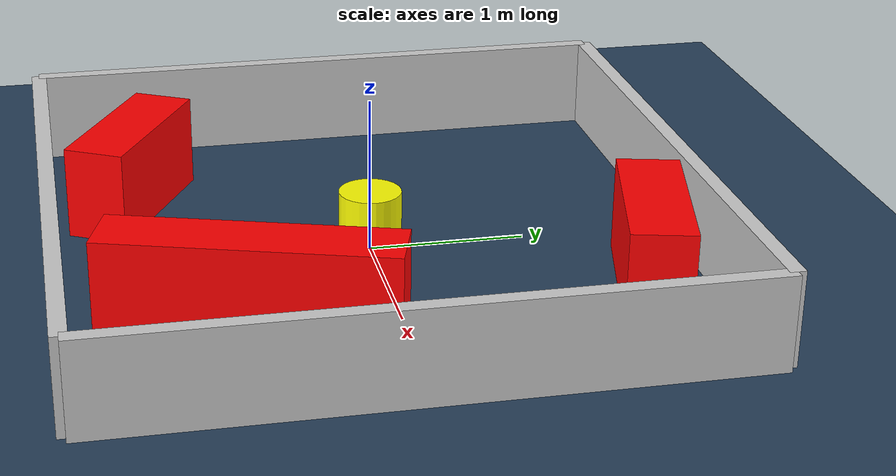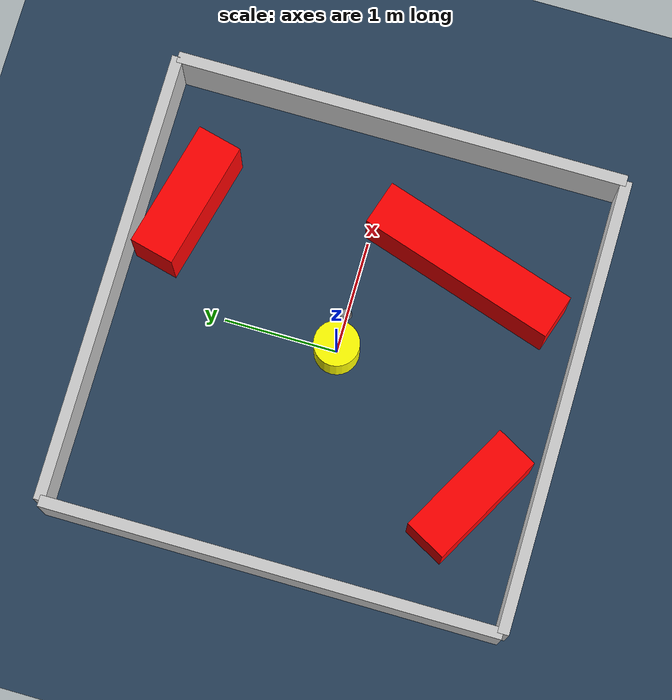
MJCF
<?xml version="1.0" ?>
<mujoco model="generated_environment">
  <option timestep="0.01" integrator="RK4" cone="elliptic"/>
  <default>
    <geom density="1"/>
  </default>
  <asset>
    <texture builtin="gradient" height="3072" rgb1="0.3 0.5 0.7" rgb2="0 0 0" type="skybox" width="512"/>
    <texture builtin="checker" height="300" mark="edge" markrgb="0.8 0.8 0.8" name="groundplane" rgb1="0.2 0.3 0.4" rgb2="0.1 0.2 0.3" type="2d" width="300"/>
    <material name="groundplane" reflectance="0.2" texrepeat="5 5" texture="groundplane" texuniform="true"/>
    <material name="robot" rgba="0.0 1.0 0.0 1"/>
  </asset>
  <worldbody>
    <light dir="0 0 -1" directional="true" pos="0 0 1.5"/>
    <geom condim="4" friction="1.0 0.005 0.001" material="groundplane" name="floor" size="0 0 0.05" type="plane"/>
    <body name="walls">
      <geom name="wall_1" condim="4" pos="-2.0 0.0 0.3" rgba="0.800000011920929 0.800000011920929 0.800000011920929 1.0" size="0.05 2.0 0.3" type="box"/>
      <geom name="wall_2" condim="4" pos="2.0 0.0 0.3" rgba="0.800000011920929 0.800000011920929 0.800000011920929 1.0" size="0.05 2.0 0.3" type="box"/>
      <geom name="wall_3" condim="4" pos="0.0 -2.0 0.3" rgba="0.800000011920929 0.800000011920929 0.800000011920929 1.0" size="2.0 0.05 0.3" type="box"/>
      <geom name="wall_4" condim="4" pos="0.0 2.0 0.3" rgba="0.800000011920929 0.800000011920929 0.800000011920929 1.0" size="2.0 0.05 0.3" type="box"/>
    </body>
    <body name="robot">
      <joint name="joint_x" type="slide" pos="0 0 0" axis="1 0 0"/>
      <joint name="joint_y" type="slide" pos="0 0 0" axis="0 1 0"/>
      <geom name="robot" type="sphere" pos="0.3 0.0 0.2" size="0.05" mass="5." friction="1.0 0.005 0.0001" condim="4" rgba="0.5 0.5 0.5 1.0"/>
      <site name="sensor_ball"/>
    </body>
    <body name="obstacle_movable_1">
      <geom name="obstacle_movable_1" condim="4" pos="0.0 0.0 0.2" euler="0 0 0.0" friction="1.0 0.005 0.001" rgba="1.0 1.0 0.0 1.0" size="0.2 0.2 0.0" type="cylinder" mass="0.1"/>
      <joint type="free"/>
    </body>
    <body name="obstacle_2_static">
      <geom name="obstacle_2_static" condim="4" pos="0.9666704889802364 -0.882499061507858 0.3" euler="0 0 72.41984175964583" friction="1.0 0.005 0.001" rgba="1 0 0 1" size="0.9040378985499782 0.2 0.3" type="box"/>
    </body>
    <body name="obstacle_3_static">
      <geom name="obstacle_3_static" condim="4" pos="0.8498262917036179 1.5830347222077943 0.3" euler="0 0 346.07745507323665" friction="1.0 0.005 0.001" rgba="1 0 0 1" size="0.5741584076366113 0.2 0.3" type="box"/>
    </body>
    <body name="obstacle_4_static">
      <geom name="obstacle_4_static" condim="4" pos="-0.9494995004689525 -1.4383026199563331 0.3" euler="0 0 151.27942323592316" friction="1.0 0.005 0.001" rgba="1 0 0 1" size="0.5522338580993864 0.2 0.3" type="box"/>
    </body>
  </worldbody>
  <actuator>
    <motor name="actuator_x" joint="joint_x" gear="1" ctrlrange="-1 1"/>
    <motor name="actuator_y" joint="joint_y" gear="1" ctrlrange="-1 1"/>
  </actuator>
</mujoco>
